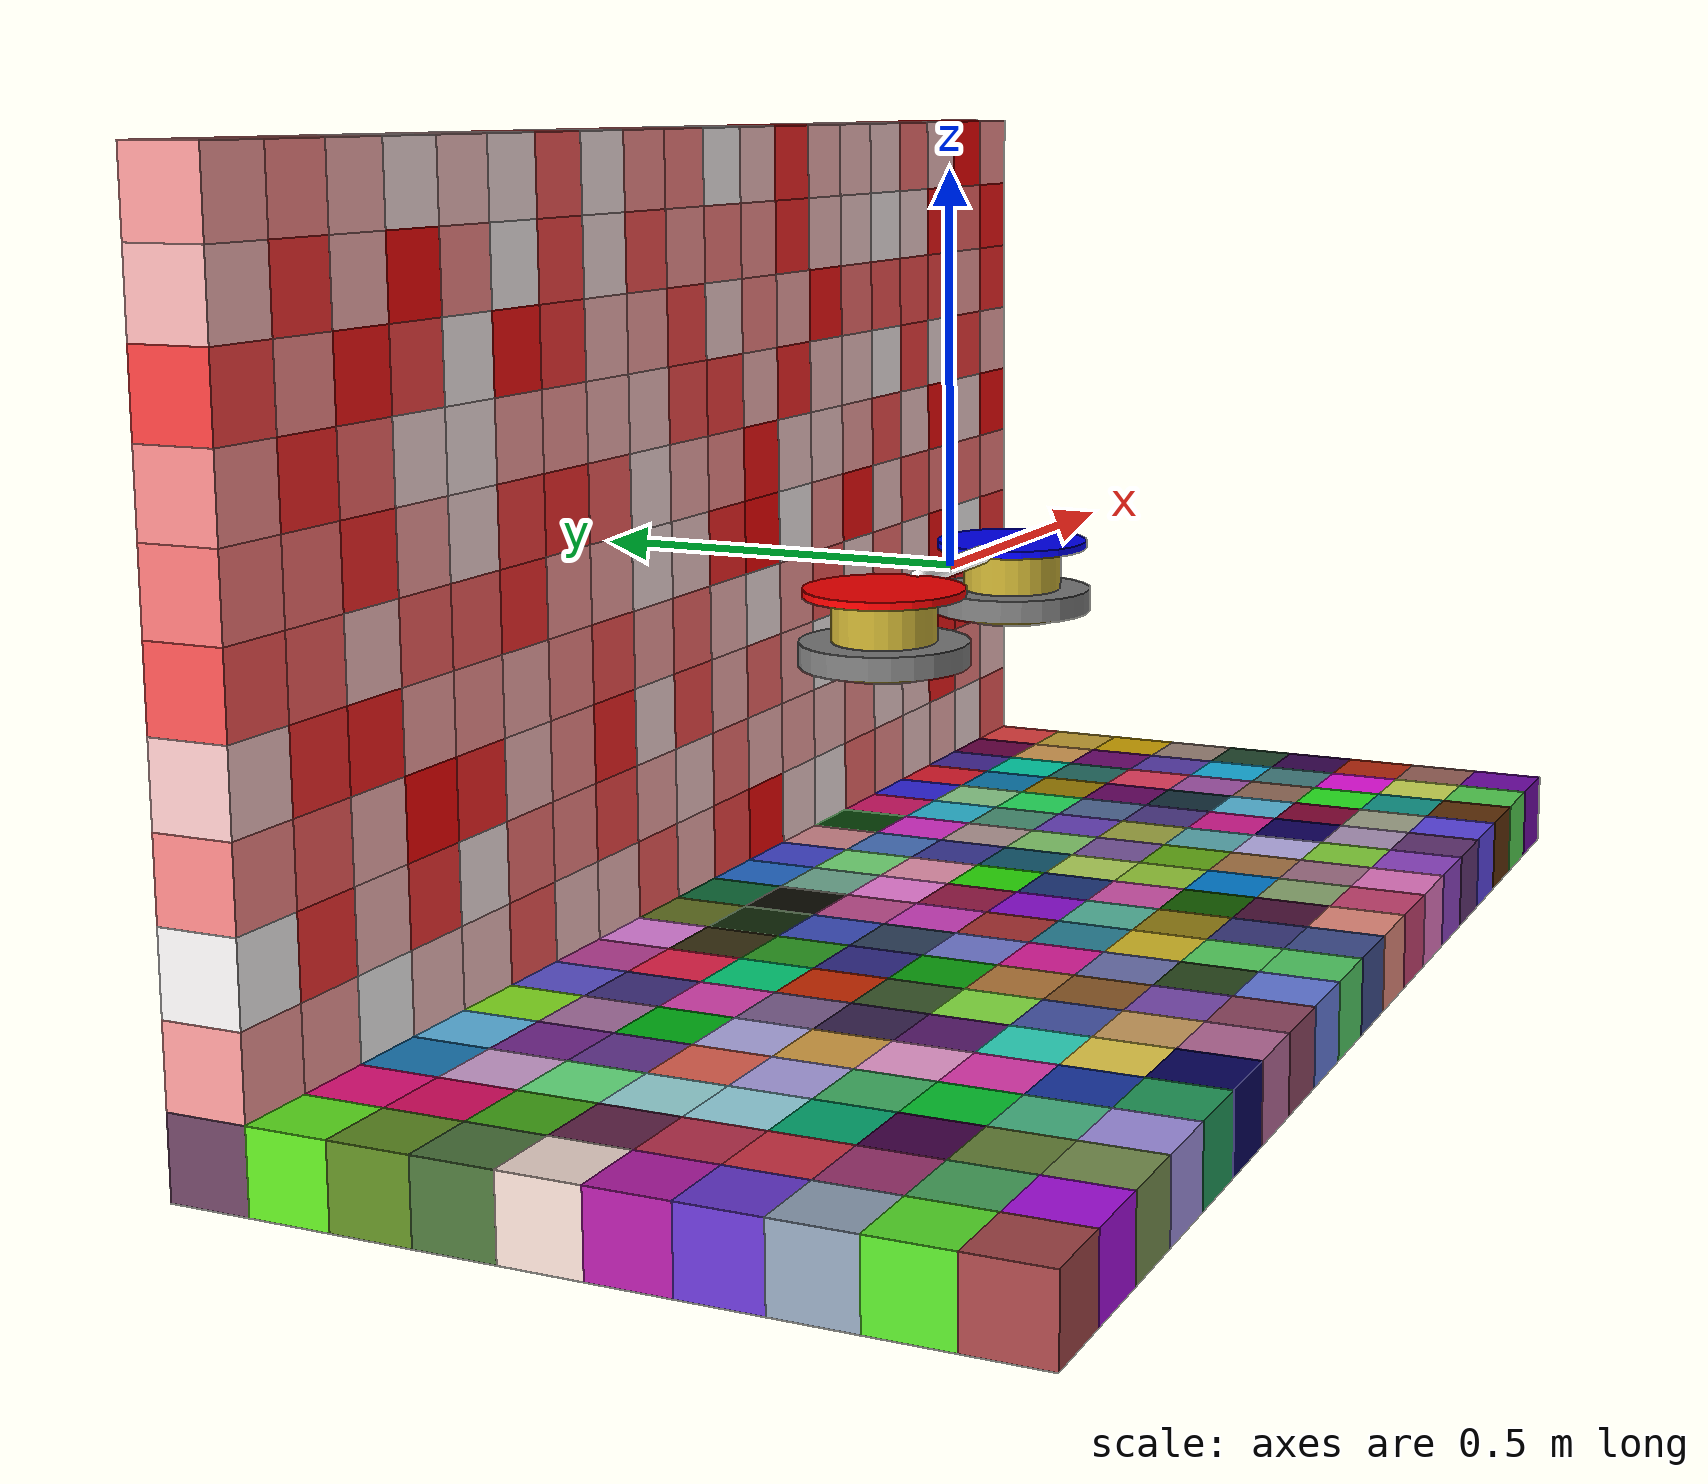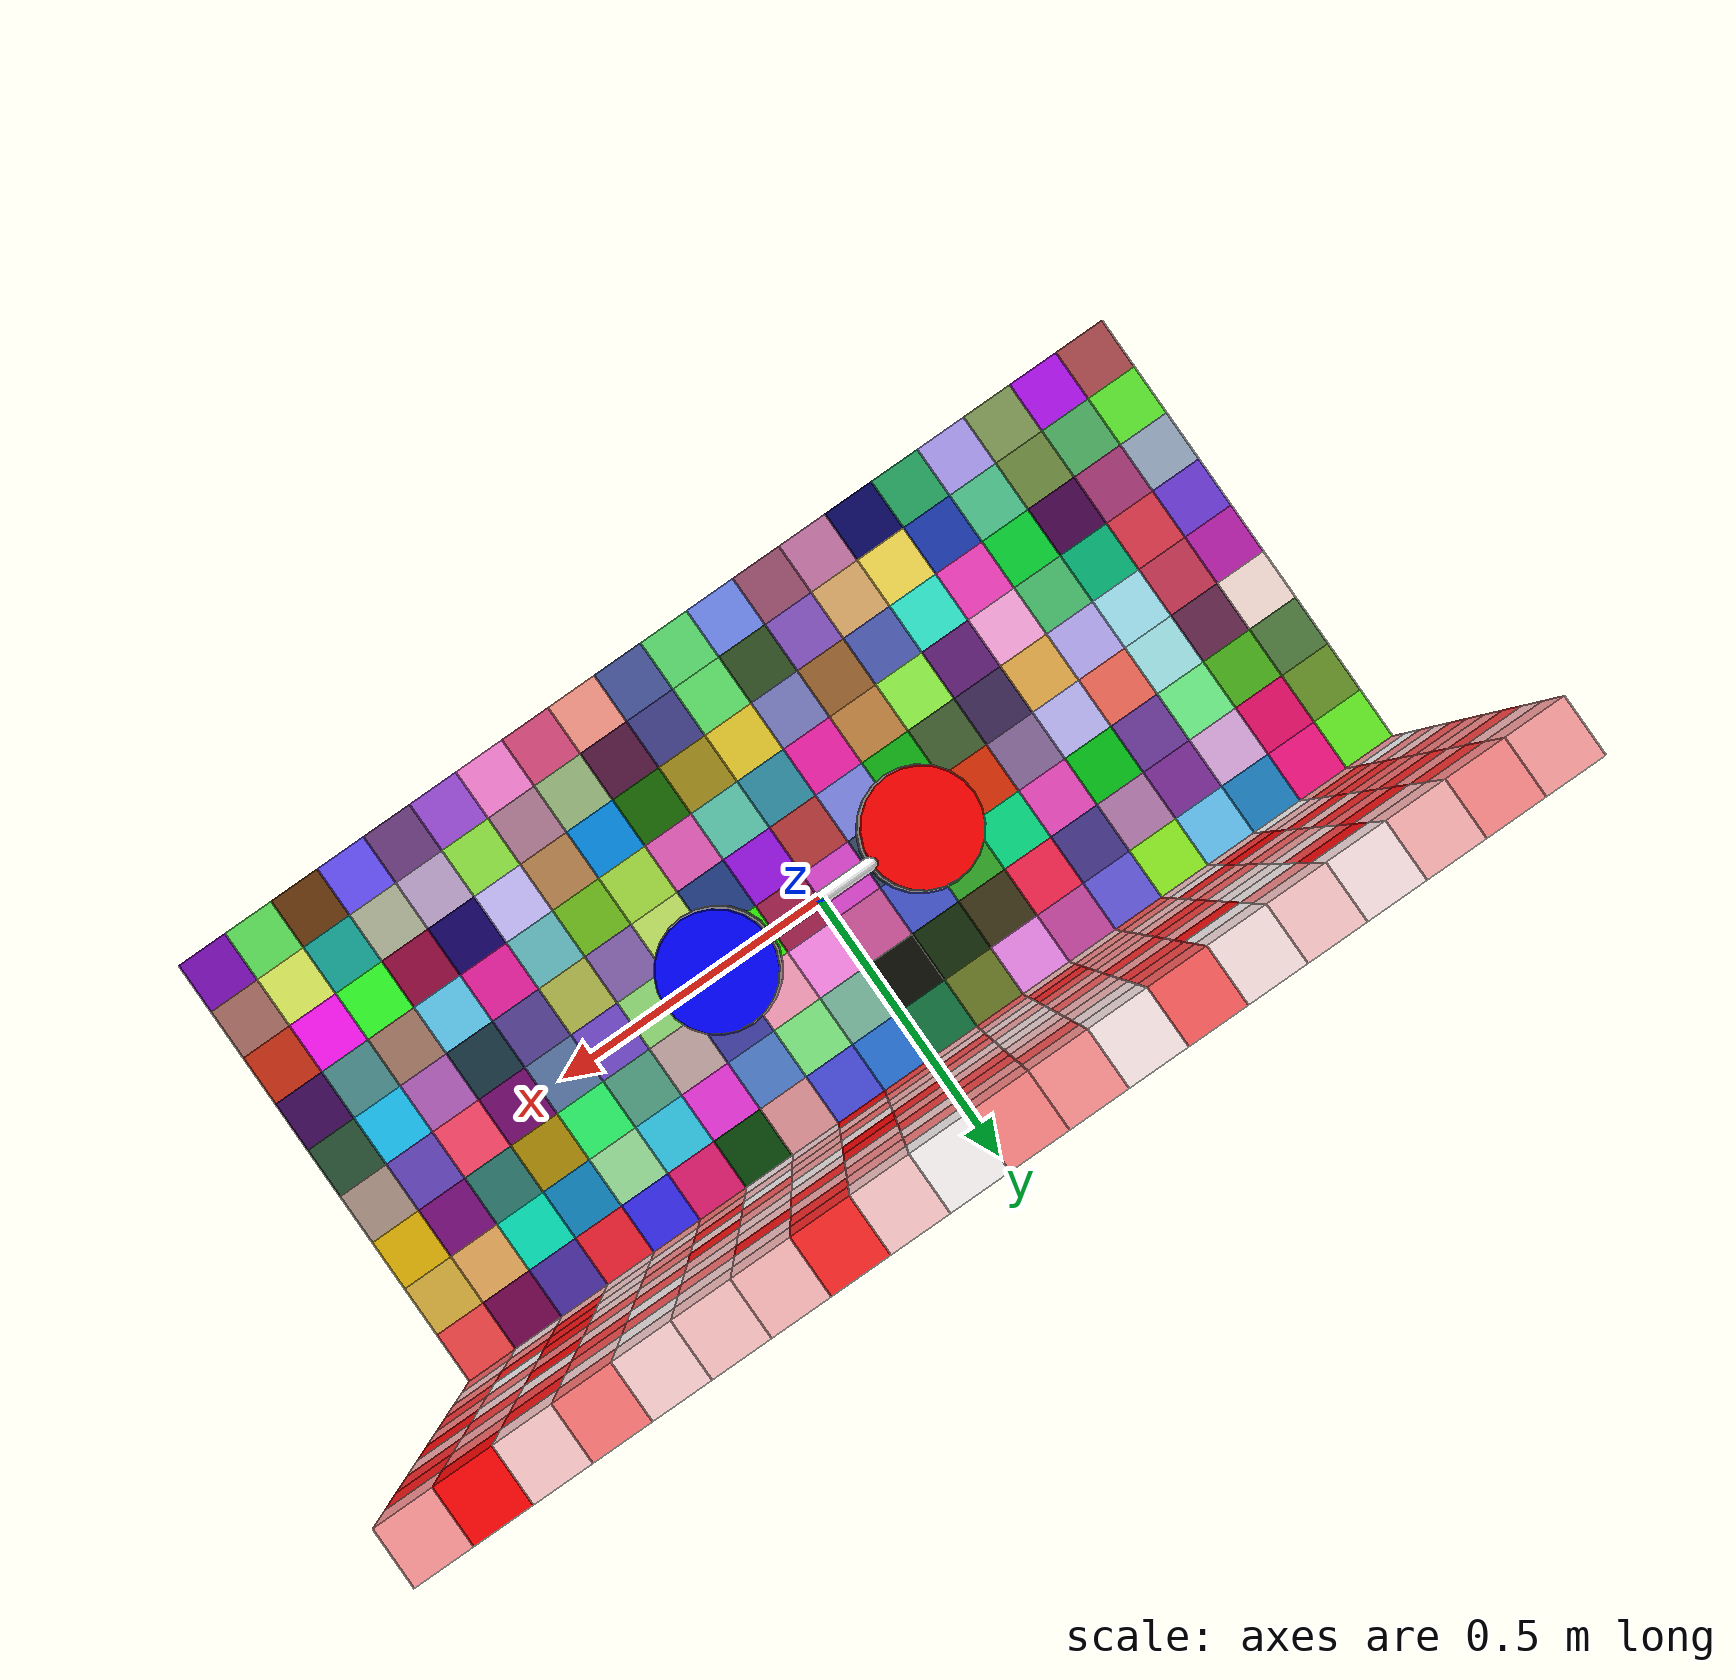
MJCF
<!-- The Lappa robot -->
<mujoco>
	<!-- set options to simulate underwater environment -->
	<option gravity="0 0 0" density="1025" viscosity=" 0.00125" />
	<include file="model_v3.xml" />
	<include file="wall.xml" />
	<include file="floor.xml" />
	<worldbody>
		<body name="box" pos="0 0 -.75">
		</body>
	</worldbody>
</mujoco>

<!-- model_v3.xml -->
<mujoco model="lappa_model">
	<visual>
		<scale contactwidth="0.1" jointwidth="0.05" jointlength=".5" />
	</visual>
	<worldbody>
		<body name="root" pos="0 0 0">
			<freejoint />
			<body name="base">
				<geom name="arm" type="capsule" fromto="-.1 0 0 .1 0 0" size=".012" rgba="1 1 1 1" mass=".02" />
				<body name="a_module" pos="-.1 0 0">
					<site name="a_propeller" pos="-.1 0 -.05" />
					<joint name="a_h2" type="hinge" axis="0 1 0" limited="true" range="-45 45" stiffness=".5" />
					<geom name="a_house" type="cylinder" size=".1 .005" pos="-.1 0 0" rgba="1 0 0 1" mass=".1" />
					<joint name="a_h1" type="hinge" axis="0 0 1" pos="-.1 0 -.05" />
					<body name="a_chamber">
						<site name="a_vacuum" pos="-.1 0 -.1" />
						<site name="a_touch" type="cylinder" size=".105 .015" pos="-.1 0 -.075" />
						<geom name="a_touch" type="cylinder" size=".105 .015" pos="-.1 0 -.075" rgba="0 1 0 .25" mass="0" />
						<geom name="a_gear" type="cylinder" size=".065 .05" pos="-.1 0 -.05" rgba="0.8 0.7 0.2 1" mass="0" />
						<geom name="a_chamber" type="box" size=".045 .045 .05" pos="-.1 0 -.05" rgba="0 0 1 1" mass=".25" />
					</body>
				</body>
				<body name="b_module" pos=".1 0 0">
					<site name="b_propeller" pos=".1 0 -.05" />
					<joint name="h3" type="hinge" axis="1 0 0" limited="true" range="-90 90" pos="-.1 0 0" stiffness=".5" damping="2" />
					<joint name="b_h2" type="hinge" axis="0 1 0" limited="true" range="-45 45" stiffness=".5" />
					<geom name="b_house" type="cylinder" size=".1 .005" pos=".1 0 0" rgba="0 0 1 1" mass=".1" />
					<joint name="b_h1" type="hinge" axis="0 0 1" pos=".1 0 -.05" />
					<body name="b_chamber">
						<site name="b_vacuum" pos=".1 0 -.1" />
						<site name="b_touch" type="cylinder" size=".105 .015" pos=".1 0 -.075" />
						<geom name="b_touch" type="cylinder" size=".105 .015" pos=".1 0 -.075" rgba="0 1 0 .25" mass="0" />
						<geom name="b_gear" type="cylinder" size=".065 .05" pos=".1 0 -.05" rgba="0.8 0.7 0.2 1" mass="0" />
						<geom name="b_chamber" type="box" size=".045 .045 .05" pos=".1 0 -.05" rgba="0 0 1 1" mass=".25" />
					</body>
				</body>
			</body>
		</body>
	</worldbody>
	<sensor>
		<force name="a_vacuum" site="a_vacuum" />
		<force name="b_vacuum" site="b_vacuum" />
		<jointpos name="a_h1" joint="a_h1" />
		<jointpos name="b_h1" joint="b_h1" />
		<jointpos name="a_h2" joint="a_h2" />
		<jointpos name="b_h2" joint="b_h2" />
		<touch name="a_touch" site="a_touch" />
		<touch name="b_touch" site="b_touch" />
		<framepos name="a_position" objtype="site" objname="a_vacuum" />
		<framepos name="b_position" objtype="site" objname="b_vacuum" />
	</sensor>
	<actuator>
		<motor name="a_thrust" site="a_propeller" ctrllimited="true" ctrlrange="-1 1" gear="0 0 15" />
		<motor name="b_thrust" site="b_propeller" ctrllimited="true" ctrlrange="-1 1" gear="0 0 15" />
		<adhesion name="a_vacuum" body="a_chamber" ctrlrange="0 1" gain="250" />
		<adhesion name="b_vacuum" body="b_chamber" ctrlrange="0 1" gain="250" />
		<motor name="a_h1" joint="a_h1" gear=".5" />
		<motor name="b_h1" joint="b_h1" gear=".5" />
	</actuator>
</mujoco>

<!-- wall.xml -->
<mujoco>
    <default>
        <geom density="100" friction=".5" rgba="1 .6 .8 1" />
    </default>
    <worldbody>
        <geom type="box" size=".05 .05 .05" pos="-0.95 .4 0.5" rgba="1 0.6249365885270398 0.6249365885270398 1" />
<geom type="box" size=".05 .05 .05" pos="-0.85 .4 0.5" rgba="1 0.5402863592001074 0.5402863592001074 1" />
<geom type="box" size=".05 .05 .05" pos="-0.75 .4 0.5" rgba="1 0.7035707833299488 0.7035707833299488 1" />
<geom type="box" size=".05 .05 .05" pos="-0.6499999999999999 .4 0.5" rgba="1 0.8994542527525893 0.8994542527525893 1" />
<geom type="box" size=".05 .05 .05" pos="-0.5499999999999999 .4 0.5" rgba="1 0.7888137883340727 0.7888137883340727 1" />
<geom type="box" size=".05 .05 .05" pos="-0.44999999999999996 .4 0.5" rgba="1 0.8964164434850438 0.8964164434850438 1" />
<geom type="box" size=".05 .05 .05" pos="-0.34999999999999987 .4 0.5" rgba="1 0.36158380665237966 0.36158380665237966 1" />
<geom type="box" size=".05 .05 .05" pos="-0.2499999999999999 .4 0.5" rgba="1 0.9215953128518855 0.9215953128518855 1" />
<geom type="box" size=".05 .05 .05" pos="-0.1499999999999999 .4 0.5" rgba="1 0.5715808802156988 0.5715808802156988 1" />
<geom type="box" size=".05 .05 .05" pos="-0.04999999999999993 .4 0.5" rgba="1 0.523808357653613 0.523808357653613 1" />
<geom type="box" size=".05 .05 .05" pos="0.050000000000000044 .4 0.5" rgba="1 0.9730639899227844 0.9730639899227844 1" />
<geom type="box" size=".05 .05 .05" pos="0.15000000000000013 .4 0.5" rgba="1 0.7909577767318466 0.7909577767318466 1" />
<geom type="box" size=".05 .05 .05" pos="0.2500000000000002 .4 0.5" rgba="1 0.14788175867264897 0.14788175867264897 1" />
<geom type="box" size=".05 .05 .05" pos="0.3500000000000001 .4 0.5" rgba="1 0.7290697123736259 0.7290697123736259 1" />
<geom type="box" size=".05 .05 .05" pos="0.4500000000000002 .4 0.5" rgba="1 0.7716333693834153 0.7716333693834153 1" />
<geom type="box" size=".05 .05 .05" pos="0.55 .4 0.5" rgba="1 0.8225880288664962 0.8225880288664962 1" />
<geom type="box" size=".05 .05 .05" pos="0.6500000000000001 .4 0.5" rgba="1 0.4610540904797972 0.4610540904797972 1" />
<geom type="box" size=".05 .05 .05" pos="0.7500000000000002 .4 0.5" rgba="1 0.7917673476872356 0.7917673476872356 1" />
<geom type="box" size=".05 .05 .05" pos="0.8500000000000001 .4 0.5" rgba="1 0.016771908382907208 0.016771908382907208 1" />
<geom type="box" size=".05 .05 .05" pos="0.9500000000000002 .4 0.5" rgba="1 0.5888028723324586 0.5888028723324586 1" />
<geom type="box" size=".05 .05 .05" pos="-0.95 .4 0.4" rgba="1 0.734821636583135 0.734821636583135 1" />
<geom type="box" size=".05 .05 .05" pos="-0.85 .4 0.4" rgba="1 0.19611746103069916 0.19611746103069916 1" />
<geom type="box" size=".05 .05 .05" pos="-0.75 .4 0.4" rgba="1 0.7174752951307708 0.7174752951307708 1" />
<geom type="box" size=".05 .05 .05" pos="-0.6499999999999999 .4 0.4" rgba="1 0.03528583838615418 0.03528583838615418 1" />
<geom type="box" size=".05 .05 .05" pos="-0.5499999999999999 .4 0.4" rgba="1 0.5539057608100689 0.5539057608100689 1" />
<geom type="box" size=".05 .05 .05" pos="-0.44999999999999996 .4 0.4" rgba="1 0.96482107564282 0.96482107564282 1" />
<geom type="box" size=".05 .05 .05" pos="-0.34999999999999987 .4 0.4" rgba="1 0.27537513182186846 0.27537513182186846 1" />
<geom type="box" size=".05 .05 .05" pos="-0.2499999999999999 .4 0.4" rgba="1 0.8960509054151102 0.8960509054151102 1" />
<geom type="box" size=".05 .05 .05" pos="-0.1499999999999999 .4 0.4" rgba="1 0.32894996102110585 0.32894996102110585 1" />
<geom type="box" size=".05 .05 .05" pos="-0.04999999999999993 .4 0.4" rgba="1 0.60096221861903 0.60096221861903 1" />
<geom type="box" size=".05 .05 .05" pos="0.050000000000000044 .4 0.4" rgba="1 0.5043448096854005 0.5043448096854005 1" />
<geom type="box" size=".05 .05 .05" pos="0.15000000000000013 .4 0.4" rgba="1 0.584613124339537 0.584613124339537 1" />
<geom type="box" size=".05 .05 .05" pos="0.2500000000000002 .4 0.4" rgba="1 0.16135931655916802 0.16135931655916802 1" />
<geom type="box" size=".05 .05 .05" pos="0.3500000000000001 .4 0.4" rgba="1 0.7819058286760782 0.7819058286760782 1" />
<geom type="box" size=".05 .05 .05" pos="0.4500000000000002 .4 0.4" rgba="1 0.8401532089593536 0.8401532089593536 1" />
<geom type="box" size=".05 .05 .05" pos="0.55 .4 0.4" rgba="1 0.9600457717361993 0.9600457717361993 1" />
<geom type="box" size=".05 .05 .05" pos="0.6500000000000001 .4 0.4" rgba="1 0.8574807343583034 0.8574807343583034 1" />
<geom type="box" size=".05 .05 .05" pos="0.7500000000000002 .4 0.4" rgba="1 0.08366781475186547 0.08366781475186547 1" />
<geom type="box" size=".05 .05 .05" pos="0.8500000000000001 .4 0.4" rgba="1 0.4212845271798331 0.4212845271798331 1" />
<geom type="box" size=".05 .05 .05" pos="0.9500000000000002 .4 0.4" rgba="1 0.0858115428785402 0.0858115428785402 1" />
<geom type="box" size=".05 .05 .05" pos="-0.95 .4 0.3" rgba="1 0.26459975489437015 0.26459975489437015 1" />
<geom type="box" size=".05 .05 .05" pos="-0.85 .4 0.3" rgba="1 0.5570063519398712 0.5570063519398712 1" />
<geom type="box" size=".05 .05 .05" pos="-0.75 .4 0.3" rgba="1 0.07431630381831877 0.07431630381831877 1" />
<geom type="box" size=".05 .05 .05" pos="-0.6499999999999999 .4 0.3" rgba="1 0.26952398309122305 0.26952398309122305 1" />
<geom type="box" size=".05 .05 .05" pos="-0.5499999999999999 .4 0.3" rgba="1 0.9600332222752059 0.9600332222752059 1" />
<geom type="box" size=".05 .05 .05" pos="-0.44999999999999996 .4 0.3" rgba="1 0.0618877279818727 0.0618877279818727 1" />
<geom type="box" size=".05 .05 .05" pos="-0.34999999999999987 .4 0.3" rgba="1 0.21960899159807123 0.21960899159807123 1" />
<geom type="box" size=".05 .05 .05" pos="-0.2499999999999999 .4 0.3" rgba="1 0.7332048458085407 0.7332048458085407 1" />
<geom type="box" size=".05 .05 .05" pos="-0.1499999999999999 .4 0.3" rgba="1 0.6533332926902017 0.6533332926902017 1" />
<geom type="box" size=".05 .05 .05" pos="-0.04999999999999993 .4 0.3" rgba="1 0.2837823206299698 0.2837823206299698 1" />
<geom type="box" size=".05 .05 .05" pos="0.050000000000000044 .4 0.3" rgba="1 0.8438540122554398 0.8438540122554398 1" />
<geom type="box" size=".05 .05 .05" pos="0.15000000000000013 .4 0.3" rgba="1 0.5385871592079314 0.5385871592079314 1" />
<geom type="box" size=".05 .05 .05" pos="0.2500000000000002 .4 0.3" rgba="1 0.6814782107558335 0.6814782107558335 1" />
<geom type="box" size=".05 .05 .05" pos="0.3500000000000001 .4 0.3" rgba="1 0.07787726057358879 0.07787726057358879 1" />
<geom type="box" size=".05 .05 .05" pos="0.4500000000000002 .4 0.3" rgba="1 0.45046949346713416 0.45046949346713416 1" />
<geom type="box" size=".05 .05 .05" pos="0.55 .4 0.3" rgba="1 0.3427720116763068 0.3427720116763068 1" />
<geom type="box" size=".05 .05 .05" pos="0.6500000000000001 .4 0.3" rgba="1 0.3230020276464479 0.3230020276464479 1" />
<geom type="box" size=".05 .05 .05" pos="0.7500000000000002 .4 0.3" rgba="1 0.274639917708538 0.274639917708538 1" />
<geom type="box" size=".05 .05 .05" pos="0.8500000000000001 .4 0.3" rgba="1 0.6476644113373458 0.6476644113373458 1" />
<geom type="box" size=".05 .05 .05" pos="0.9500000000000002 .4 0.3" rgba="1 0.16778809277226292 0.16778809277226292 1" />
<geom type="box" size=".05 .05 .05" pos="-0.95 .4 0.19999999999999996" rgba="1 0.5657403968633267 0.5657403968633267 1" />
<geom type="box" size=".05 .05 .05" pos="-0.85 .4 0.19999999999999996" rgba="1 0.15508130357221084 0.15508130357221084 1" />
<geom type="box" size=".05 .05 .05" pos="-0.75 .4 0.19999999999999996" rgba="1 0.4173191114854913 0.4173191114854913 1" />
<geom type="box" size=".05 .05 .05" pos="-0.6499999999999999 .4 0.19999999999999996" rgba="1 0.8756131746725737 0.8756131746725737 1" />
<geom type="box" size=".05 .05 .05" pos="-0.5499999999999999 .4 0.19999999999999996" rgba="1 0.9248850679220117 0.9248850679220117 1" />
<geom type="box" size=".05 .05 .05" pos="-0.44999999999999996 .4 0.19999999999999996" rgba="1 0.642820037972179 0.642820037972179 1" />
<geom type="box" size=".05 .05 .05" pos="-0.34999999999999987 .4 0.19999999999999996" rgba="1 0.6263343759108346 0.6263343759108346 1" />
<geom type="box" size=".05 .05 .05" pos="-0.2499999999999999 .4 0.19999999999999996" rgba="1 0.7253089636717721 0.7253089636717721 1" />
<geom type="box" size=".05 .05 .05" pos="-0.1499999999999999 .4 0.19999999999999996" rgba="1 0.7847282779011421 0.7847282779011421 1" />
<geom type="box" size=".05 .05 .05" pos="-0.04999999999999993 .4 0.19999999999999996" rgba="1 0.3041615078185438 0.3041615078185438 1" />
<geom type="box" size=".05 .05 .05" pos="0.050000000000000044 .4 0.19999999999999996" rgba="1 0.2526545205641534 0.2526545205641534 1" />
<geom type="box" size=".05 .05 .05" pos="0.15000000000000013 .4 0.19999999999999996" rgba="1 0.7375011336887496 0.7375011336887496 1" />
<geom type="box" size=".05 .05 .05" pos="0.2500000000000002 .4 0.19999999999999996" rgba="1 0.15989079751660407 0.15989079751660407 1" />
<geom type="box" size=".05 .05 .05" pos="0.3500000000000001 .4 0.19999999999999996" rgba="1 0.7715038159619356 0.7715038159619356 1" />
<geom type="box" size=".05 .05 .05" pos="0.4500000000000002 .4 0.19999999999999996" rgba="1 0.8069912596036789 0.8069912596036789 1" />
<geom type="box" size=".05 .05 .05" pos="0.55 .4 0.19999999999999996" rgba="1 0.958862791441296 0.958862791441296 1" />
<geom type="box" size=".05 .05 .05" pos="0.6500000000000001 .4 0.19999999999999996" rgba="1 0.253156944437121 0.253156944437121 1" />
<geom type="box" size=".05 .05 .05" pos="0.7500000000000002 .4 0.19999999999999996" rgba="1 0.9082081232935123 0.9082081232935123 1" />
<geom type="box" size=".05 .05 .05" pos="0.8500000000000001 .4 0.19999999999999996" rgba="1 0.2366827896570447 0.2366827896570447 1" />
<geom type="box" size=".05 .05 .05" pos="0.9500000000000002 .4 0.19999999999999996" rgba="1 0.68831485578225 0.68831485578225 1" />
<geom type="box" size=".05 .05 .05" pos="-0.95 .4 0.09999999999999998" rgba="1 0.4876522832785303 0.4876522832785303 1" />
<geom type="box" size=".05 .05 .05" pos="-0.85 .4 0.09999999999999998" rgba="1 0.4496065983152854 0.4496065983152854 1" />
<geom type="box" size=".05 .05 .05" pos="-0.75 .4 0.09999999999999998" rgba="1 0.16084668867237506 0.16084668867237506 1" />
<geom type="box" size=".05 .05 .05" pos="-0.6499999999999999 .4 0.09999999999999998" rgba="1 0.639485591818262 0.639485591818262 1" />
<geom type="box" size=".05 .05 .05" pos="-0.5499999999999999 .4 0.09999999999999998" rgba="1 0.8720820917541405 0.8720820917541405 1" />
<geom type="box" size=".05 .05 .05" pos="-0.44999999999999996 .4 0.09999999999999998" rgba="1 0.24905766709085797 0.24905766709085797 1" />
<geom type="box" size=".05 .05 .05" pos="-0.34999999999999987 .4 0.09999999999999998" rgba="1 0.1814606706558598 0.1814606706558598 1" />
<geom type="box" size=".05 .05 .05" pos="-0.2499999999999999 .4 0.09999999999999998" rgba="1 0.37895020608198293 0.37895020608198293 1" />
<geom type="box" size=".05 .05 .05" pos="-0.1499999999999999 .4 0.09999999999999998" rgba="1 0.8810677793178061 0.8810677793178061 1" />
<geom type="box" size=".05 .05 .05" pos="-0.04999999999999993 .4 0.09999999999999998" rgba="1 0.6967286801085335 0.6967286801085335 1" />
<geom type="box" size=".05 .05 .05" pos="0.050000000000000044 .4 0.09999999999999998" rgba="1 0.5705166954256164 0.5705166954256164 1" />
<geom type="box" size=".05 .05 .05" pos="0.15000000000000013 .4 0.09999999999999998" rgba="1 0.0686847787679965 0.0686847787679965 1" />
<geom type="box" size=".05 .05 .05" pos="0.2500000000000002 .4 0.09999999999999998" rgba="1 0.822141292997612 0.822141292997612 1" />
<geom type="box" size=".05 .05 .05" pos="0.3500000000000001 .4 0.09999999999999998" rgba="1 0.8283498105592491 0.8283498105592491 1" />
<geom type="box" size=".05 .05 .05" pos="0.4500000000000002 .4 0.09999999999999998" rgba="1 0.6649743078016681 0.6649743078016681 1" />
<geom type="box" size=".05 .05 .05" pos="0.55 .4 0.09999999999999998" rgba="1 0.323639179686801 0.323639179686801 1" />
<geom type="box" size=".05 .05 .05" pos="0.6500000000000001 .4 0.09999999999999998" rgba="1 0.8210533357945993 0.8210533357945993 1" />
<geom type="box" size=".05 .05 .05" pos="0.7500000000000002 .4 0.09999999999999998" rgba="1 0.04187455373976201 0.04187455373976201 1" />
<geom type="box" size=".05 .05 .05" pos="0.8500000000000001 .4 0.09999999999999998" rgba="1 0.8499843139813222 0.8499843139813222 1" />
<geom type="box" size=".05 .05 .05" pos="0.9500000000000002 .4 0.09999999999999998" rgba="1 0.044757793500901366 0.044757793500901366 1" />
<geom type="box" size=".05 .05 .05" pos="-0.95 .4 0.0" rgba="1 0.3378397717570687 0.3378397717570687 1" />
<geom type="box" size=".05 .05 .05" pos="-0.85 .4 0.0" rgba="1 0.37978463541824214 0.37978463541824214 1" />
<geom type="box" size=".05 .05 .05" pos="-0.75 .4 0.0" rgba="1 0.7749991276481574 0.7749991276481574 1" />
<geom type="box" size=".05 .05 .05" pos="-0.6499999999999999 .4 0.0" rgba="1 0.3885672306295386 0.3885672306295386 1" />
<geom type="box" size=".05 .05 .05" pos="-0.5499999999999999 .4 0.0" rgba="1 0.38216335182776195 0.38216335182776195 1" />
<geom type="box" size=".05 .05 .05" pos="-0.44999999999999996 .4 0.0" rgba="1 0.18027469000574192 0.18027469000574192 1" />
<geom type="box" size=".05 .05 .05" pos="-0.34999999999999987 .4 0.0" rgba="1 0.6078254191492 0.6078254191492 1" />
<geom type="box" size=".05 .05 .05" pos="-0.2499999999999999 .4 0.0" rgba="1 0.659061130032232 0.659061130032232 1" />
<geom type="box" size=".05 .05 .05" pos="-0.1499999999999999 .4 0.0" rgba="1 0.8994828501712211 0.8994828501712211 1" />
<geom type="box" size=".05 .05 .05" pos="-0.04999999999999993 .4 0.0" rgba="1 0.8333930264687509 0.8333930264687509 1" />
<geom type="box" size=".05 .05 .05" pos="0.050000000000000044 .4 0.0" rgba="1 0.1547953661105973 0.1547953661105973 1" />
<geom type="box" size=".05 .05 .05" pos="0.15000000000000013 .4 0.0" rgba="1 0.019720642609650563 0.019720642609650563 1" />
<geom type="box" size=".05 .05 .05" pos="0.2500000000000002 .4 0.0" rgba="1 0.9680832014127304 0.9680832014127304 1" />
<geom type="box" size=".05 .05 .05" pos="0.3500000000000001 .4 0.0" rgba="1 0.5807713386811595 0.5807713386811595 1" />
<geom type="box" size=".05 .05 .05" pos="0.4500000000000002 .4 0.0" rgba="1 0.06419820945565347 0.06419820945565347 1" />
<geom type="box" size=".05 .05 .05" pos="0.55 .4 0.0" rgba="1 0.8003116848578181 0.8003116848578181 1" />
<geom type="box" size=".05 .05 .05" pos="0.6500000000000001 .4 0.0" rgba="1 0.36958781724171086 0.36958781724171086 1" />
<geom type="box" size=".05 .05 .05" pos="0.7500000000000002 .4 0.0" rgba="1 0.4938834354223185 0.4938834354223185 1" />
<geom type="box" size=".05 .05 .05" pos="0.8500000000000001 .4 0.0" rgba="1 0.45625554762378606 0.45625554762378606 1" />
<geom type="box" size=".05 .05 .05" pos="0.9500000000000002 .4 0.0" rgba="1 0.5188520190076489 0.5188520190076489 1" />
<geom type="box" size=".05 .05 .05" pos="-0.95 .4 -0.10000000000000009" rgba="1 0.8051425623005403 0.8051425623005403 1" />
<geom type="box" size=".05 .05 .05" pos="-0.85 .4 -0.10000000000000009" rgba="1 0.17353922071581007 0.17353922071581007 1" />
<geom type="box" size=".05 .05 .05" pos="-0.75 .4 -0.10000000000000009" rgba="1 0.11079013323249387 0.11079013323249387 1" />
<geom type="box" size=".05 .05 .05" pos="-0.6499999999999999 .4 -0.10000000000000009" rgba="1 0.6546534640219349 0.6546534640219349 1" />
<geom type="box" size=".05 .05 .05" pos="-0.5499999999999999 .4 -0.10000000000000009" rgba="1 0.596076908944645 0.596076908944645 1" />
<geom type="box" size=".05 .05 .05" pos="-0.44999999999999996 .4 -0.10000000000000009" rgba="1 0.6900218289716761 0.6900218289716761 1" />
<geom type="box" size=".05 .05 .05" pos="-0.34999999999999987 .4 -0.10000000000000009" rgba="1 0.5484107097853697 0.5484107097853697 1" />
<geom type="box" size=".05 .05 .05" pos="-0.2499999999999999 .4 -0.10000000000000009" rgba="1 0.3293542170377476 0.3293542170377476 1" />
<geom type="box" size=".05 .05 .05" pos="-0.1499999999999999 .4 -0.10000000000000009" rgba="1 0.6506310600737478 0.6506310600737478 1" />
<geom type="box" size=".05 .05 .05" pos="-0.04999999999999993 .4 -0.10000000000000009" rgba="1 0.42176688005625496 0.42176688005625496 1" />
<geom type="box" size=".05 .05 .05" pos="0.050000000000000044 .4 -0.10000000000000009" rgba="1 0.7450600691537774 0.7450600691537774 1" />
<geom type="box" size=".05 .05 .05" pos="0.15000000000000013 .4 -0.10000000000000009" rgba="1 0.9242385113756871 0.9242385113756871 1" />
<geom type="box" size=".05 .05 .05" pos="0.2500000000000002 .4 -0.10000000000000009" rgba="1 0.6267470408283471 0.6267470408283471 1" />
<geom type="box" size=".05 .05 .05" pos="0.3500000000000001 .4 -0.10000000000000009" rgba="1 0.36406817275190806 0.36406817275190806 1" />
<geom type="box" size=".05 .05 .05" pos="0.4500000000000002 .4 -0.10000000000000009" rgba="1 0.8445439962091164 0.8445439962091164 1" />
<geom type="box" size=".05 .05 .05" pos="0.55 .4 -0.10000000000000009" rgba="1 0.45344160037992276 0.45344160037992276 1" />
<geom type="box" size=".05 .05 .05" pos="0.6500000000000001 .4 -0.10000000000000009" rgba="1 0.8429847154419462 0.8429847154419462 1" />
<geom type="box" size=".05 .05 .05" pos="0.7500000000000002 .4 -0.10000000000000009" rgba="1 0.06535131578783027 0.06535131578783027 1" />
<geom type="box" size=".05 .05 .05" pos="0.8500000000000001 .4 -0.10000000000000009" rgba="1 0.9907015646951133 0.9907015646951133 1" />
<geom type="box" size=".05 .05 .05" pos="0.9500000000000002 .4 -0.10000000000000009" rgba="1 0.20905679873933658 0.20905679873933658 1" />
<geom type="box" size=".05 .05 .05" pos="-0.95 .4 -0.20000000000000007" rgba="1 0.5435959921201181 0.5435959921201181 1" />
<geom type="box" size=".05 .05 .05" pos="-0.85 .4 -0.20000000000000007" rgba="1 0.376877117613989 0.376877117613989 1" />
<geom type="box" size=".05 .05 .05" pos="-0.75 .4 -0.20000000000000007" rgba="1 0.7183299216063457 0.7183299216063457 1" />
<geom type="box" size=".05 .05 .05" pos="-0.6499999999999999 .4 -0.20000000000000007" rgba="1 0.021503667583288477 0.021503667583288477 1" />
<geom type="box" size=".05 .05 .05" pos="-0.5499999999999999 .4 -0.20000000000000007" rgba="1 0.15264408010527297 0.15264408010527297 1" />
<geom type="box" size=".05 .05 .05" pos="-0.44999999999999996 .4 -0.20000000000000007" rgba="1 0.7577756864005616 0.7577756864005616 1" />
<geom type="box" size=".05 .05 .05" pos="-0.34999999999999987 .4 -0.20000000000000007" rgba="1 0.5630311865651221 0.5630311865651221 1" />
<geom type="box" size=".05 .05 .05" pos="-0.2499999999999999 .4 -0.20000000000000007" rgba="1 0.14337321067722197 0.14337321067722197 1" />
<geom type="box" size=".05 .05 .05" pos="-0.1499999999999999 .4 -0.20000000000000007" rgba="1 0.8698814995372044 0.8698814995372044 1" />
<geom type="box" size=".05 .05 .05" pos="-0.04999999999999993 .4 -0.20000000000000007" rgba="1 0.3070623053990772 0.3070623053990772 1" />
<geom type="box" size=".05 .05 .05" pos="0.050000000000000044 .4 -0.20000000000000007" rgba="1 0.7030756817195258 0.7030756817195258 1" />
<geom type="box" size=".05 .05 .05" pos="0.15000000000000013 .4 -0.20000000000000007" rgba="1 0.4257732120660269 0.4257732120660269 1" />
<geom type="box" size=".05 .05 .05" pos="0.2500000000000002 .4 -0.20000000000000007" rgba="1 0.6533923153182638 0.6533923153182638 1" />
<geom type="box" size=".05 .05 .05" pos="0.3500000000000001 .4 -0.20000000000000007" rgba="1 0.976795760888126 0.976795760888126 1" />
<geom type="box" size=".05 .05 .05" pos="0.4500000000000002 .4 -0.20000000000000007" rgba="1 0.13858372262159613 0.13858372262159613 1" />
<geom type="box" size=".05 .05 .05" pos="0.55 .4 -0.20000000000000007" rgba="1 0.5442870080082435 0.5442870080082435 1" />
<geom type="box" size=".05 .05 .05" pos="0.6500000000000001 .4 -0.20000000000000007" rgba="1 0.8564737732782909 0.8564737732782909 1" />
<geom type="box" size=".05 .05 .05" pos="0.7500000000000002 .4 -0.20000000000000007" rgba="1 0.08172750921627259 0.08172750921627259 1" />
<geom type="box" size=".05 .05 .05" pos="0.8500000000000001 .4 -0.20000000000000007" rgba="1 0.12524812273580432 0.12524812273580432 1" />
<geom type="box" size=".05 .05 .05" pos="0.9500000000000002 .4 -0.20000000000000007" rgba="1 0.47191321694133903 0.47191321694133903 1" />
<geom type="box" size=".05 .05 .05" pos="-0.95 .4 -0.30000000000000004" rgba="1 0.9898750090808478 0.9898750090808478 1" />
<geom type="box" size=".05 .05 .05" pos="-0.85 .4 -0.30000000000000004" rgba="1 0.1927507339015363 0.1927507339015363 1" />
<geom type="box" size=".05 .05 .05" pos="-0.75 .4 -0.30000000000000004" rgba="1 0.7458894199533962 0.7458894199533962 1" />
<geom type="box" size=".05 .05 .05" pos="-0.6499999999999999 .4 -0.30000000000000004" rgba="1 0.20964898741534832 0.20964898741534832 1" />
<geom type="box" size=".05 .05 .05" pos="-0.5499999999999999 .4 -0.30000000000000004" rgba="1 0.9290640045711712 0.9290640045711712 1" />
<geom type="box" size=".05 .05 .05" pos="-0.44999999999999996 .4 -0.30000000000000004" rgba="1 0.46692089231070033 0.46692089231070033 1" />
<geom type="box" size=".05 .05 .05" pos="-0.34999999999999987 .4 -0.30000000000000004" rgba="1 0.5455233353199223 0.5455233353199223 1" />
<geom type="box" size=".05 .05 .05" pos="-0.2499999999999999 .4 -0.30000000000000004" rgba="1 0.289554269394105 0.289554269394105 1" />
<geom type="box" size=".05 .05 .05" pos="-0.1499999999999999 .4 -0.30000000000000004" rgba="1 0.6850180667549214 0.6850180667549214 1" />
<geom type="box" size=".05 .05 .05" pos="-0.04999999999999993 .4 -0.30000000000000004" rgba="1 0.8170362844535591 0.8170362844535591 1" />
<geom type="box" size=".05 .05 .05" pos="0.050000000000000044 .4 -0.30000000000000004" rgba="1 0.45925856892927097 0.45925856892927097 1" />
<geom type="box" size=".05 .05 .05" pos="0.15000000000000013 .4 -0.30000000000000004" rgba="1 0.7351141865859776 0.7351141865859776 1" />
<geom type="box" size=".05 .05 .05" pos="0.2500000000000002 .4 -0.30000000000000004" rgba="1 0.6721082542305289 0.6721082542305289 1" />
<geom type="box" size=".05 .05 .05" pos="0.3500000000000001 .4 -0.30000000000000004" rgba="1 0.750329241059521 0.750329241059521 1" />
<geom type="box" size=".05 .05 .05" pos="0.4500000000000002 .4 -0.30000000000000004" rgba="1 0.5878312811273251 0.5878312811273251 1" />
<geom type="box" size=".05 .05 .05" pos="0.55 .4 -0.30000000000000004" rgba="1 0.8629064237234538 0.8629064237234538 1" />
<geom type="box" size=".05 .05 .05" pos="0.6500000000000001 .4 -0.30000000000000004" rgba="1 0.8145435282380755 0.8145435282380755 1" />
<geom type="box" size=".05 .05 .05" pos="0.7500000000000002 .4 -0.30000000000000004" rgba="1 0.11714928911379219 0.11714928911379219 1" />
<geom type="box" size=".05 .05 .05" pos="0.8500000000000001 .4 -0.30000000000000004" rgba="1 0.5270421036555711 0.5270421036555711 1" />
<geom type="box" size=".05 .05 .05" pos="0.9500000000000002 .4 -0.30000000000000004" rgba="1 0.7856599143023747 0.7856599143023747 1" />
<geom type="box" size=".05 .05 .05" pos="-0.95 .4 -0.4" rgba="1 0.6234845876696359 0.6234845876696359 1" />
<geom type="box" size=".05 .05 .05" pos="-0.85 .4 -0.4" rgba="1 0.631878149502487 0.631878149502487 1" />
<geom type="box" size=".05 .05 .05" pos="-0.75 .4 -0.4" rgba="1 0.9990811971493702 0.9990811971493702 1" />
<geom type="box" size=".05 .05 .05" pos="-0.6499999999999999 .4 -0.4" rgba="1 0.7782208088296866 0.7782208088296866 1" />
<geom type="box" size=".05 .05 .05" pos="-0.5499999999999999 .4 -0.4" rgba="1 0.7897551863984769 0.7897551863984769 1" />
<geom type="box" size=".05 .05 .05" pos="-0.44999999999999996 .4 -0.4" rgba="1 0.35065573595219857 0.35065573595219857 1" />
<geom type="box" size=".05 .05 .05" pos="-0.34999999999999987 .4 -0.4" rgba="1 0.7865840398583814 0.7865840398583814 1" />
<geom type="box" size=".05 .05 .05" pos="-0.2499999999999999 .4 -0.4" rgba="1 0.7647294609321417 0.7647294609321417 1" />
<geom type="box" size=".05 .05 .05" pos="-0.1499999999999999 .4 -0.4" rgba="1 0.3739442290508129 0.3739442290508129 1" />
<geom type="box" size=".05 .05 .05" pos="-0.04999999999999993 .4 -0.4" rgba="1 0.7116984977425245 0.7116984977425245 1" />
<geom type="box" size=".05 .05 .05" pos="0.050000000000000044 .4 -0.4" rgba="1 0.2817338476314061 0.2817338476314061 1" />
<geom type="box" size=".05 .05 .05" pos="0.15000000000000013 .4 -0.4" rgba="1 0.034048984933011894 0.034048984933011894 1" />
<geom type="box" size=".05 .05 .05" pos="0.2500000000000002 .4 -0.4" rgba="1 0.8492594226706031 0.8492594226706031 1" />
<geom type="box" size=".05 .05 .05" pos="0.3500000000000001 .4 -0.4" rgba="1 0.9339530491070972 0.9339530491070972 1" />
<geom type="box" size=".05 .05 .05" pos="0.4500000000000002 .4 -0.4" rgba="1 0.44385260230084067 0.44385260230084067 1" />
<geom type="box" size=".05 .05 .05" pos="0.55 .4 -0.4" rgba="1 0.5917283315901434 0.5917283315901434 1" />
<geom type="box" size=".05 .05 .05" pos="0.6500000000000001 .4 -0.4" rgba="1 0.8245801465283704 0.8245801465283704 1" />
<geom type="box" size=".05 .05 .05" pos="0.7500000000000002 .4 -0.4" rgba="1 0.7282088157368869 0.7282088157368869 1" />
<geom type="box" size=".05 .05 .05" pos="0.8500000000000001 .4 -0.4" rgba="1 0.8886589939585513 0.8886589939585513 1" />
<geom type="box" size=".05 .05 .05" pos="0.9500000000000002 .4 -0.4" rgba="1 0.3737308155555752 0.3737308155555752 1" />

    </worldbody>
</mujoco>
